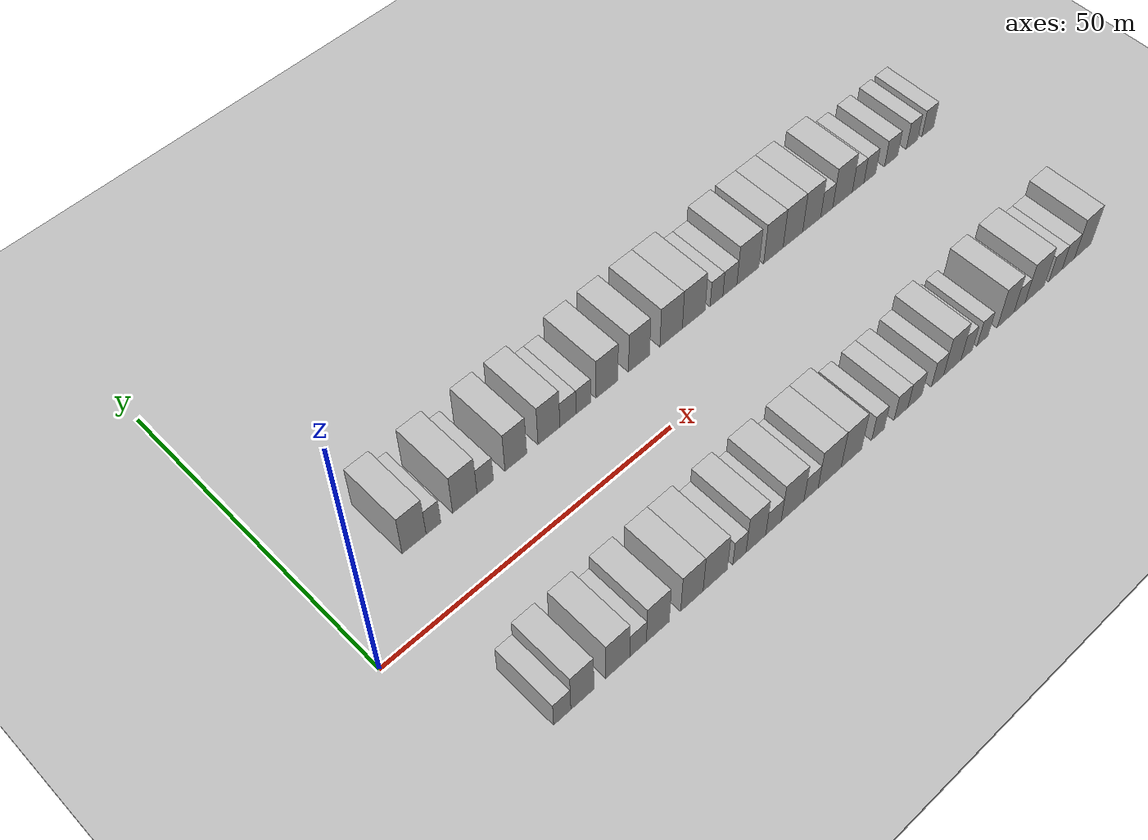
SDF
<sdf version="1.6">
 <world name="default">
  <include><name>ground_plane_1</name><uri>model://HANNAS_ground_plane</uri></include>
  <include>
   <name>ground_plane_2</name>
   <uri>model://HANNAS_ground_plane</uri>
   <pose>100 0 0  0 0 0</pose>
  </include>
  <model name="building_1">
   <static>1</static>
   <pose>13.9863 15.0000 0 0.000000 0.000000 1.570796</pose>
   <link name="link">
    <pose>0 0 4.50 0 0 0</pose>
    <collision name="collision"><geometry><box><size>10.0000 3.9726 9.0000</size></box></geometry></collision>
    <visual name="visual">
     <cast_shadows>0</cast_shadows>
     <geometry><box><size>10.0000 3.9726 9.0000</size></box></geometry>
     <material>
      <script>
       <uri>model://HANNAS_wall/materials/scripts</uri>
       <uri>model://HANNAS_wall/materials/textures</uri>
       <name>vrc/HANNAS_wall</name>
      </script>
     </material>
    </visual>
   </link>
  </model>
  <model name="building_2">
   <static>1</static>
   <pose>17.2035 15.0000 0 0.000000 0.000000 1.570796</pose>
   <link name="link">
    <pose>0 0 3.00 0 0 0</pose>
    <collision name="collision"><geometry><box><size>10.0000 2.4617 6.0000</size></box></geometry></collision>
    <visual name="visual">
     <cast_shadows>0</cast_shadows>
     <geometry><box><size>10.0000 2.4617 6.0000</size></box></geometry>
     <material>
      <script>
       <uri>model://HANNAS_wall/materials/scripts</uri>
       <uri>model://HANNAS_wall/materials/textures</uri>
       <name>vrc/HANNAS_wall</name>
      </script>
     </material>
    </visual>
   </link>
  </model>
  <model name="building_3">
   <static>1</static>
   <pose>22.5151 15.0000 0 0.000000 0.000000 1.570796</pose>
   <link name="link">
    <pose>0 0 4.50 0 0 0</pose>
    <collision name="collision"><geometry><box><size>10.0000 4.1615 9.0000</size></box></geometry></collision>
    <visual name="visual">
     <cast_shadows>0</cast_shadows>
     <geometry><box><size>10.0000 4.1615 9.0000</size></box></geometry>
     <material>
      <script>
       <uri>model://HANNAS_wall/materials/scripts</uri>
       <uri>model://HANNAS_wall/materials/textures</uri>
       <name>vrc/HANNAS_wall</name>
      </script>
     </material>
    </visual>
   </link>
  </model>
  <model name="building_4">
   <static>1</static>
   <pose>26.0151 15.0000 0 0.000000 0.000000 1.570796</pose>
   <link name="link">
    <pose>0 0 3.00 0 0 0</pose>
    <collision name="collision"><geometry><box><size>10.0000 2.8385 6.0000</size></box></geometry></collision>
    <visual name="visual">
     <cast_shadows>0</cast_shadows>
     <geometry><box><size>10.0000 2.8385 6.0000</size></box></geometry>
     <material>
      <script>
       <uri>model://HANNAS_wall/materials/scripts</uri>
       <uri>model://HANNAS_wall/materials/textures</uri>
       <name>vrc/HANNAS_wall</name>
      </script>
     </material>
    </visual>
   </link>
  </model>
  <model name="building_5">
   <static>1</static>
   <pose>31.3539 15.0000 0 0.000000 0.000000 1.570796</pose>
   <link name="link">
    <pose>0 0 4.50 0 0 0</pose>
    <collision name="collision"><geometry><box><size>10.0000 3.8392 9.0000</size></box></geometry></collision>
    <visual name="visual">
     <cast_shadows>0</cast_shadows>
     <geometry><box><size>10.0000 3.8392 9.0000</size></box></geometry>
     <material>
      <script>
       <uri>model://HANNAS_wall/materials/scripts</uri>
       <uri>model://HANNAS_wall/materials/textures</uri>
       <name>vrc/HANNAS_wall</name>
      </script>
     </material>
    </visual>
   </link>
  </model>
  <model name="building_6">
   <static>1</static>
   <pose>37.2430 15.0000 0 0.000000 0.000000 1.570796</pose>
   <link name="link">
    <pose>0 0 4.50 0 0 0</pose>
    <collision name="collision"><geometry><box><size>10.0000 3.9389 9.0000</size></box></geometry></collision>
    <visual name="visual">
     <cast_shadows>0</cast_shadows>
     <geometry><box><size>10.0000 3.9389 9.0000</size></box></geometry>
     <material>
      <script>
       <uri>model://HANNAS_wall/materials/scripts</uri>
       <uri>model://HANNAS_wall/materials/textures</uri>
       <name>vrc/HANNAS_wall</name>
      </script>
     </material>
    </visual>
   </link>
  </model>
  <model name="building_7">
   <static>1</static>
   <pose>40.6891 15.0000 0 0.000000 0.000000 1.570796</pose>
   <link name="link">
    <pose>0 0 3.00 0 0 0</pose>
    <collision name="collision"><geometry><box><size>10.0000 2.9532 6.0000</size></box></geometry></collision>
    <visual name="visual">
     <cast_shadows>0</cast_shadows>
     <geometry><box><size>10.0000 2.9532 6.0000</size></box></geometry>
     <material>
      <script>
       <uri>model://HANNAS_wall/materials/scripts</uri>
       <uri>model://HANNAS_wall/materials/textures</uri>
       <name>vrc/HANNAS_wall</name>
      </script>
     </material>
    </visual>
   </link>
  </model>
  <model name="building_8">
   <static>1</static>
   <pose>43.5024 15.0000 0 0.000000 0.000000 1.570796</pose>
   <link name="link">
    <pose>0 0 3.00 0 0 0</pose>
    <collision name="collision"><geometry><box><size>10.0000 2.6734 6.0000</size></box></geometry></collision>
    <visual name="visual">
     <cast_shadows>0</cast_shadows>
     <geometry><box><size>10.0000 2.6734 6.0000</size></box></geometry>
     <material>
      <script>
       <uri>model://HANNAS_wall/materials/scripts</uri>
       <uri>model://HANNAS_wall/materials/textures</uri>
       <name>vrc/HANNAS_wall</name>
      </script>
     </material>
    </visual>
   </link>
  </model>
  <model name="building_9">
   <static>1</static>
   <pose>47.8759 15.0000 0 0.000000 0.000000 1.570796</pose>
   <link name="link">
    <pose>0 0 4.50 0 0 0</pose>
    <collision name="collision"><geometry><box><size>10.0000 4.0736 9.0000</size></box></geometry></collision>
    <visual name="visual">
     <cast_shadows>0</cast_shadows>
     <geometry><box><size>10.0000 4.0736 9.0000</size></box></geometry>
     <material>
      <script>
       <uri>model://HANNAS_wall/materials/scripts</uri>
       <uri>model://HANNAS_wall/materials/textures</uri>
       <name>vrc/HANNAS_wall</name>
      </script>
     </material>
    </visual>
   </link>
  </model>
  <model name="building_10">
   <static>1</static>
   <pose>53.9139 15.0000 0 0.000000 0.000000 1.570796</pose>
   <link name="link">
    <pose>0 0 4.50 0 0 0</pose>
    <collision name="collision"><geometry><box><size>10.0000 4.0025 9.0000</size></box></geometry></collision>
    <visual name="visual">
     <cast_shadows>0</cast_shadows>
     <geometry><box><size>10.0000 4.0025 9.0000</size></box></geometry>
     <material>
      <script>
       <uri>model://HANNAS_wall/materials/scripts</uri>
       <uri>model://HANNAS_wall/materials/textures</uri>
       <name>vrc/HANNAS_wall</name>
      </script>
     </material>
    </visual>
   </link>
  </model>
  <model name="building_11">
   <static>1</static>
   <pose>60.0964 15.0000 0 0.000000 0.000000 1.570796</pose>
   <link name="link">
    <pose>0 0 4.50 0 0 0</pose>
    <collision name="collision"><geometry><box><size>10.0000 4.3625 9.0000</size></box></geometry></collision>
    <visual name="visual">
     <cast_shadows>0</cast_shadows>
     <geometry><box><size>10.0000 4.3625 9.0000</size></box></geometry>
     <material>
      <script>
       <uri>model://HANNAS_wall/materials/scripts</uri>
       <uri>model://HANNAS_wall/materials/textures</uri>
       <name>vrc/HANNAS_wall</name>
      </script>
     </material>
    </visual>
   </link>
  </model>
  <model name="building_12">
   <static>1</static>
   <pose>64.5238 15.0000 0 0.000000 0.000000 1.570796</pose>
   <link name="link">
    <pose>0 0 4.50 0 0 0</pose>
    <collision name="collision"><geometry><box><size>10.0000 4.4922 9.0000</size></box></geometry></collision>
    <visual name="visual">
     <cast_shadows>0</cast_shadows>
     <geometry><box><size>10.0000 4.4922 9.0000</size></box></geometry>
     <material>
      <script>
       <uri>model://HANNAS_wall/materials/scripts</uri>
       <uri>model://HANNAS_wall/materials/textures</uri>
       <name>vrc/HANNAS_wall</name>
      </script>
     </material>
    </visual>
   </link>
  </model>
  <model name="building_13">
   <static>1</static>
   <pose>69.0498 15.0000 0 0.000000 0.000000 1.570796</pose>
   <link name="link">
    <pose>0 0 3.00 0 0 0</pose>
    <collision name="collision"><geometry><box><size>10.0000 2.5598 6.0000</size></box></geometry></collision>
    <visual name="visual">
     <cast_shadows>0</cast_shadows>
     <geometry><box><size>10.0000 2.5598 6.0000</size></box></geometry>
     <material>
      <script>
       <uri>model://HANNAS_wall/materials/scripts</uri>
       <uri>model://HANNAS_wall/materials/textures</uri>
       <name>vrc/HANNAS_wall</name>
      </script>
     </material>
    </visual>
   </link>
  </model>
  <model name="building_14">
   <static>1</static>
   <pose>71.7501 15.0000 0 0.000000 0.000000 1.570796</pose>
   <link name="link">
    <pose>0 0 3.00 0 0 0</pose>
    <collision name="collision"><geometry><box><size>10.0000 2.8408 6.0000</size></box></geometry></collision>
    <visual name="visual">
     <cast_shadows>0</cast_shadows>
     <geometry><box><size>10.0000 2.8408 6.0000</size></box></geometry>
     <material>
      <script>
       <uri>model://HANNAS_wall/materials/scripts</uri>
       <uri>model://HANNAS_wall/materials/textures</uri>
       <name>vrc/HANNAS_wall</name>
      </script>
     </material>
    </visual>
   </link>
  </model>
  <model name="building_15">
   <static>1</static>
   <pose>75.4201 15.0000 0 0.000000 0.000000 1.570796</pose>
   <link name="link">
    <pose>0 0 4.50 0 0 0</pose>
    <collision name="collision"><geometry><box><size>10.0000 4.4993 9.0000</size></box></geometry></collision>
    <visual name="visual">
     <cast_shadows>0</cast_shadows>
     <geometry><box><size>10.0000 4.4993 9.0000</size></box></geometry>
     <material>
      <script>
       <uri>model://HANNAS_wall/materials/scripts</uri>
       <uri>model://HANNAS_wall/materials/textures</uri>
       <name>vrc/HANNAS_wall</name>
      </script>
     </material>
    </visual>
   </link>
  </model>
  <model name="building_16">
   <static>1</static>
   <pose>80.6914 15.0000 0 0.000000 0.000000 1.570796</pose>
   <link name="link">
    <pose>0 0 4.50 0 0 0</pose>
    <collision name="collision"><geometry><box><size>10.0000 4.0434 9.0000</size></box></geometry></collision>
    <visual name="visual">
     <cast_shadows>0</cast_shadows>
     <geometry><box><size>10.0000 4.0434 9.0000</size></box></geometry>
     <material>
      <script>
       <uri>model://HANNAS_wall/materials/scripts</uri>
       <uri>model://HANNAS_wall/materials/textures</uri>
       <name>vrc/HANNAS_wall</name>
      </script>
     </material>
    </visual>
   </link>
  </model>
  <model name="building_17">
   <static>1</static>
   <pose>84.7833 15.0000 0 0.000000 0.000000 1.570796</pose>
   <link name="link">
    <pose>0 0 4.50 0 0 0</pose>
    <collision name="collision"><geometry><box><size>10.0000 4.1405 9.0000</size></box></geometry></collision>
    <visual name="visual">
     <cast_shadows>0</cast_shadows>
     <geometry><box><size>10.0000 4.1405 9.0000</size></box></geometry>
     <material>
      <script>
       <uri>model://HANNAS_wall/materials/scripts</uri>
       <uri>model://HANNAS_wall/materials/textures</uri>
       <name>vrc/HANNAS_wall</name>
      </script>
     </material>
    </visual>
   </link>
  </model>
  <model name="building_18">
   <static>1</static>
   <pose>88.7812 15.0000 0 0.000000 0.000000 1.570796</pose>
   <link name="link">
    <pose>0 0 4.50 0 0 0</pose>
    <collision name="collision"><geometry><box><size>10.0000 3.8553 9.0000</size></box></geometry></collision>
    <visual name="visual">
     <cast_shadows>0</cast_shadows>
     <geometry><box><size>10.0000 3.8553 9.0000</size></box></geometry>
     <material>
      <script>
       <uri>model://HANNAS_wall/materials/scripts</uri>
       <uri>model://HANNAS_wall/materials/textures</uri>
       <name>vrc/HANNAS_wall</name>
      </script>
     </material>
    </visual>
   </link>
  </model>
  <model name="building_19">
   <static>1</static>
   <pose>92.0073 15.0000 0 0.000000 0.000000 1.570796</pose>
   <link name="link">
    <pose>0 0 3.00 0 0 0</pose>
    <collision name="collision"><geometry><box><size>10.0000 2.5967 6.0000</size></box></geometry></collision>
    <visual name="visual">
     <cast_shadows>0</cast_shadows>
     <geometry><box><size>10.0000 2.5967 6.0000</size></box></geometry>
     <material>
      <script>
       <uri>model://HANNAS_wall/materials/scripts</uri>
       <uri>model://HANNAS_wall/materials/textures</uri>
       <name>vrc/HANNAS_wall</name>
      </script>
     </material>
    </visual>
   </link>
  </model>
  <model name="building_20">
   <static>1</static>
   <pose>95.4486 15.0000 0 0.000000 0.000000 1.570796</pose>
   <link name="link">
    <pose>0 0 4.50 0 0 0</pose>
    <collision name="collision"><geometry><box><size>10.0000 4.2859 9.0000</size></box></geometry></collision>
    <visual name="visual">
     <cast_shadows>0</cast_shadows>
     <geometry><box><size>10.0000 4.2859 9.0000</size></box></geometry>
     <material>
      <script>
       <uri>model://HANNAS_wall/materials/scripts</uri>
       <uri>model://HANNAS_wall/materials/textures</uri>
       <name>vrc/HANNAS_wall</name>
      </script>
     </material>
    </visual>
   </link>
  </model>
  <model name="building_21">
   <static>1</static>
   <pose>98.8770 15.0000 0 0.000000 0.000000 1.570796</pose>
   <link name="link">
    <pose>0 0 3.00 0 0 0</pose>
    <collision name="collision"><geometry><box><size>10.0000 2.5709 6.0000</size></box></geometry></collision>
    <visual name="visual">
     <cast_shadows>0</cast_shadows>
     <geometry><box><size>10.0000 2.5709 6.0000</size></box></geometry>
     <material>
      <script>
       <uri>model://HANNAS_wall/materials/scripts</uri>
       <uri>model://HANNAS_wall/materials/textures</uri>
       <name>vrc/HANNAS_wall</name>
      </script>
     </material>
    </visual>
   </link>
  </model>
  <model name="building_22">
   <static>1</static>
   <pose>101.4697 15.0000 0 0.000000 0.000000 1.570796</pose>
   <link name="link">
    <pose>0 0 3.00 0 0 0</pose>
    <collision name="collision"><geometry><box><size>10.0000 2.6144 6.0000</size></box></geometry></collision>
    <visual name="visual">
     <cast_shadows>0</cast_shadows>
     <geometry><box><size>10.0000 2.6144 6.0000</size></box></geometry>
     <material>
      <script>
       <uri>model://HANNAS_wall/materials/scripts</uri>
       <uri>model://HANNAS_wall/materials/textures</uri>
       <name>vrc/HANNAS_wall</name>
      </script>
     </material>
    </visual>
   </link>
  </model>
  <model name="building_23">
   <static>1</static>
   <pose>106.2533 15.0000 0 0.000000 0.000000 1.570796</pose>
   <link name="link">
    <pose>0 0 3.00 0 0 0</pose>
    <collision name="collision"><geometry><box><size>10.0000 2.9528 6.0000</size></box></geometry></collision>
    <visual name="visual">
     <cast_shadows>0</cast_shadows>
     <geometry><box><size>10.0000 2.9528 6.0000</size></box></geometry>
     <material>
      <script>
       <uri>model://HANNAS_wall/materials/scripts</uri>
       <uri>model://HANNAS_wall/materials/textures</uri>
       <name>vrc/HANNAS_wall</name>
      </script>
     </material>
    </visual>
   </link>
  </model>
  <model name="building_24">
   <static>1</static>
   <pose>111.0208 15.0000 0 0.000000 0.000000 1.570796</pose>
   <link name="link">
    <pose>0 0 3.00 0 0 0</pose>
    <collision name="collision"><geometry><box><size>10.0000 2.5822 6.0000</size></box></geometry></collision>
    <visual name="visual">
     <cast_shadows>0</cast_shadows>
     <geometry><box><size>10.0000 2.5822 6.0000</size></box></geometry>
     <material>
      <script>
       <uri>model://HANNAS_wall/materials/scripts</uri>
       <uri>model://HANNAS_wall/materials/textures</uri>
       <name>vrc/HANNAS_wall</name>
      </script>
     </material>
    </visual>
   </link>
  </model>
  <model name="building_25">
   <static>1</static>
   <pose>114.6714 15.0000 0 0.000000 0.000000 1.570796</pose>
   <link name="link">
    <pose>0 0 3.00 0 0 0</pose>
    <collision name="collision"><geometry><box><size>10.0000 2.7189 6.0000</size></box></geometry></collision>
    <visual name="visual">
     <cast_shadows>0</cast_shadows>
     <geometry><box><size>10.0000 2.7189 6.0000</size></box></geometry>
     <material>
      <script>
       <uri>model://HANNAS_wall/materials/scripts</uri>
       <uri>model://HANNAS_wall/materials/textures</uri>
       <name>vrc/HANNAS_wall</name>
      </script>
     </material>
    </visual>
   </link>
  </model>
  <model name="building_52">
   <static>1</static>
   <pose>11.3973 -15.0000 0 0.000000 0.000000 1.570796</pose>
   <link name="link">
    <pose>0 0 3.00 0 0 0</pose>
    <collision name="collision"><geometry><box><size>10.0000 2.7946 6.0000</size></box></geometry></collision>
    <visual name="visual">
     <cast_shadows>0</cast_shadows>
     <geometry><box><size>10.0000 2.7946 6.0000</size></box></geometry>
     <material>
      <script>
       <uri>model://HANNAS_wall/materials/scripts</uri>
       <uri>model://HANNAS_wall/materials/textures</uri>
       <name>vrc/HANNAS_wall</name>
      </script>
     </material>
    </visual>
   </link>
  </model>
  <model name="building_53">
   <static>1</static>
   <pose>14.6870 -15.0000 0 0.000000 0.000000 1.570796</pose>
   <link name="link">
    <pose>0 0 4.50 0 0 0</pose>
    <collision name="collision"><geometry><box><size>10.0000 3.7847 9.0000</size></box></geometry></collision>
    <visual name="visual">
     <cast_shadows>0</cast_shadows>
     <geometry><box><size>10.0000 3.7847 9.0000</size></box></geometry>
     <material>
      <script>
       <uri>model://HANNAS_wall/materials/scripts</uri>
       <uri>model://HANNAS_wall/materials/textures</uri>
       <name>vrc/HANNAS_wall</name>
      </script>
     </material>
    </visual>
   </link>
  </model>
  <model name="building_54">
   <static>1</static>
   <pose>20.5842 -15.0000 0 0.000000 0.000000 1.570796</pose>
   <link name="link">
    <pose>0 0 4.50 0 0 0</pose>
    <collision name="collision"><geometry><box><size>10.0000 4.0096 9.0000</size></box></geometry></collision>
    <visual name="visual">
     <cast_shadows>0</cast_shadows>
     <geometry><box><size>10.0000 4.0096 9.0000</size></box></geometry>
     <material>
      <script>
       <uri>model://HANNAS_wall/materials/scripts</uri>
       <uri>model://HANNAS_wall/materials/textures</uri>
       <name>vrc/HANNAS_wall</name>
      </script>
     </material>
    </visual>
   </link>
  </model>
  <model name="building_55">
   <static>1</static>
   <pose>24.0114 -15.0000 0 0.000000 0.000000 1.570796</pose>
   <link name="link">
    <pose>0 0 3.00 0 0 0</pose>
    <collision name="collision"><geometry><box><size>10.0000 2.8448 6.0000</size></box></geometry></collision>
    <visual name="visual">
     <cast_shadows>0</cast_shadows>
     <geometry><box><size>10.0000 2.8448 6.0000</size></box></geometry>
     <material>
      <script>
       <uri>model://HANNAS_wall/materials/scripts</uri>
       <uri>model://HANNAS_wall/materials/textures</uri>
       <name>vrc/HANNAS_wall</name>
      </script>
     </material>
    </visual>
   </link>
  </model>
  <model name="building_56">
   <static>1</static>
   <pose>27.4137 -15.0000 0 0.000000 0.000000 1.570796</pose>
   <link name="link">
    <pose>0 0 4.50 0 0 0</pose>
    <collision name="collision"><geometry><box><size>10.0000 3.9599 9.0000</size></box></geometry></collision>
    <visual name="visual">
     <cast_shadows>0</cast_shadows>
     <geometry><box><size>10.0000 3.9599 9.0000</size></box></geometry>
     <material>
      <script>
       <uri>model://HANNAS_wall/materials/scripts</uri>
       <uri>model://HANNAS_wall/materials/textures</uri>
       <name>vrc/HANNAS_wall</name>
      </script>
     </material>
    </visual>
   </link>
  </model>
  <model name="building_57">
   <static>1</static>
   <pose>33.3716 -15.0000 0 0.000000 0.000000 1.570796</pose>
   <link name="link">
    <pose>0 0 4.50 0 0 0</pose>
    <collision name="collision"><geometry><box><size>10.0000 3.9559 9.0000</size></box></geometry></collision>
    <visual name="visual">
     <cast_shadows>0</cast_shadows>
     <geometry><box><size>10.0000 3.9559 9.0000</size></box></geometry>
     <material>
      <script>
       <uri>model://HANNAS_wall/materials/scripts</uri>
       <uri>model://HANNAS_wall/materials/textures</uri>
       <name>vrc/HANNAS_wall</name>
      </script>
     </material>
    </visual>
   </link>
  </model>
  <model name="building_58">
   <static>1</static>
   <pose>37.5189 -15.0000 0 0.000000 0.000000 1.570796</pose>
   <link name="link">
    <pose>0 0 4.50 0 0 0</pose>
    <collision name="collision"><geometry><box><size>10.0000 4.3388 9.0000</size></box></geometry></collision>
    <visual name="visual">
     <cast_shadows>0</cast_shadows>
     <geometry><box><size>10.0000 4.3388 9.0000</size></box></geometry>
     <material>
      <script>
       <uri>model://HANNAS_wall/materials/scripts</uri>
       <uri>model://HANNAS_wall/materials/textures</uri>
       <name>vrc/HANNAS_wall</name>
      </script>
     </material>
    </visual>
   </link>
  </model>
  <model name="building_59">
   <static>1</static>
   <pose>41.8885 -15.0000 0 0.000000 0.000000 1.570796</pose>
   <link name="link">
    <pose>0 0 3.00 0 0 0</pose>
    <collision name="collision"><geometry><box><size>10.0000 2.4004 6.0000</size></box></geometry></collision>
    <visual name="visual">
     <cast_shadows>0</cast_shadows>
     <geometry><box><size>10.0000 2.4004 6.0000</size></box></geometry>
     <material>
      <script>
       <uri>model://HANNAS_wall/materials/scripts</uri>
       <uri>model://HANNAS_wall/materials/textures</uri>
       <name>vrc/HANNAS_wall</name>
      </script>
     </material>
    </visual>
   </link>
  </model>
  <model name="building_60">
   <static>1</static>
   <pose>44.9065 -15.0000 0 0.000000 0.000000 1.570796</pose>
   <link name="link">
    <pose>0 0 4.50 0 0 0</pose>
    <collision name="collision"><geometry><box><size>10.0000 3.6356 9.0000</size></box></geometry></collision>
    <visual name="visual">
     <cast_shadows>0</cast_shadows>
     <geometry><box><size>10.0000 3.6356 9.0000</size></box></geometry>
     <material>
      <script>
       <uri>model://HANNAS_wall/materials/scripts</uri>
       <uri>model://HANNAS_wall/materials/textures</uri>
       <name>vrc/HANNAS_wall</name>
      </script>
     </material>
    </visual>
   </link>
  </model>
  <model name="building_61">
   <static>1</static>
   <pose>48.1842 -15.0000 0 0.000000 0.000000 1.570796</pose>
   <link name="link">
    <pose>0 0 3.00 0 0 0</pose>
    <collision name="collision"><geometry><box><size>10.0000 2.9200 6.0000</size></box></geometry></collision>
    <visual name="visual">
     <cast_shadows>0</cast_shadows>
     <geometry><box><size>10.0000 2.9200 6.0000</size></box></geometry>
     <material>
      <script>
       <uri>model://HANNAS_wall/materials/scripts</uri>
       <uri>model://HANNAS_wall/materials/textures</uri>
       <name>vrc/HANNAS_wall</name>
      </script>
     </material>
    </visual>
   </link>
  </model>
  <model name="building_62">
   <static>1</static>
   <pose>51.7884 -15.0000 0 0.000000 0.000000 1.570796</pose>
   <link name="link">
    <pose>0 0 4.50 0 0 0</pose>
    <collision name="collision"><geometry><box><size>10.0000 4.2884 9.0000</size></box></geometry></collision>
    <visual name="visual">
     <cast_shadows>0</cast_shadows>
     <geometry><box><size>10.0000 4.2884 9.0000</size></box></geometry>
     <material>
      <script>
       <uri>model://HANNAS_wall/materials/scripts</uri>
       <uri>model://HANNAS_wall/materials/textures</uri>
       <name>vrc/HANNAS_wall</name>
      </script>
     </material>
    </visual>
   </link>
  </model>
  <model name="building_63">
   <static>1</static>
   <pose>55.2880 -15.0000 0 0.000000 0.000000 1.570796</pose>
   <link name="link">
    <pose>0 0 3.00 0 0 0</pose>
    <collision name="collision"><geometry><box><size>10.0000 2.7107 6.0000</size></box></geometry></collision>
    <visual name="visual">
     <cast_shadows>0</cast_shadows>
     <geometry><box><size>10.0000 2.7107 6.0000</size></box></geometry>
     <material>
      <script>
       <uri>model://HANNAS_wall/materials/scripts</uri>
       <uri>model://HANNAS_wall/materials/textures</uri>
       <name>vrc/HANNAS_wall</name>
      </script>
     </material>
    </visual>
   </link>
  </model>
  <model name="building_64">
   <static>1</static>
   <pose>58.8782 -15.0000 0 0.000000 0.000000 1.570796</pose>
   <link name="link">
    <pose>0 0 4.50 0 0 0</pose>
    <collision name="collision"><geometry><box><size>10.0000 4.4697 9.0000</size></box></geometry></collision>
    <visual name="visual">
     <cast_shadows>0</cast_shadows>
     <geometry><box><size>10.0000 4.4697 9.0000</size></box></geometry>
     <material>
      <script>
       <uri>model://HANNAS_wall/materials/scripts</uri>
       <uri>model://HANNAS_wall/materials/textures</uri>
       <name>vrc/HANNAS_wall</name>
      </script>
     </material>
    </visual>
   </link>
  </model>
  <model name="building_65">
   <static>1</static>
   <pose>63.1442 -15.0000 0 0.000000 0.000000 1.570796</pose>
   <link name="link">
    <pose>0 0 4.50 0 0 0</pose>
    <collision name="collision"><geometry><box><size>10.0000 4.0622 9.0000</size></box></geometry></collision>
    <visual name="visual">
     <cast_shadows>0</cast_shadows>
     <geometry><box><size>10.0000 4.0622 9.0000</size></box></geometry>
     <material>
      <script>
       <uri>model://HANNAS_wall/materials/scripts</uri>
       <uri>model://HANNAS_wall/materials/textures</uri>
       <name>vrc/HANNAS_wall</name>
      </script>
     </material>
    </visual>
   </link>
  </model>
  <model name="building_66">
   <static>1</static>
   <pose>68.4313 -15.0000 0 0.000000 0.000000 1.570796</pose>
   <link name="link">
    <pose>0 0 3.00 0 0 0</pose>
    <collision name="collision"><geometry><box><size>10.0000 2.5121 6.0000</size></box></geometry></collision>
    <visual name="visual">
     <cast_shadows>0</cast_shadows>
     <geometry><box><size>10.0000 2.5121 6.0000</size></box></geometry>
     <material>
      <script>
       <uri>model://HANNAS_wall/materials/scripts</uri>
       <uri>model://HANNAS_wall/materials/textures</uri>
       <name>vrc/HANNAS_wall</name>
      </script>
     </material>
    </visual>
   </link>
  </model>
  <model name="building_67">
   <static>1</static>
   <pose>73.0961 -15.0000 0 0.000000 0.000000 1.570796</pose>
   <link name="link">
    <pose>0 0 3.00 0 0 0</pose>
    <collision name="collision"><geometry><box><size>10.0000 2.8175 6.0000</size></box></geometry></collision>
    <visual name="visual">
     <cast_shadows>0</cast_shadows>
     <geometry><box><size>10.0000 2.8175 6.0000</size></box></geometry>
     <material>
      <script>
       <uri>model://HANNAS_wall/materials/scripts</uri>
       <uri>model://HANNAS_wall/materials/textures</uri>
       <name>vrc/HANNAS_wall</name>
      </script>
     </material>
    </visual>
   </link>
  </model>
  <model name="building_68">
   <static>1</static>
   <pose>75.9450 -15.0000 0 0.000000 0.000000 1.570796</pose>
   <link name="link">
    <pose>0 0 3.00 0 0 0</pose>
    <collision name="collision"><geometry><box><size>10.0000 2.8802 6.0000</size></box></geometry></collision>
    <visual name="visual">
     <cast_shadows>0</cast_shadows>
     <geometry><box><size>10.0000 2.8802 6.0000</size></box></geometry>
     <material>
      <script>
       <uri>model://HANNAS_wall/materials/scripts</uri>
       <uri>model://HANNAS_wall/materials/textures</uri>
       <name>vrc/HANNAS_wall</name>
      </script>
     </material>
    </visual>
   </link>
  </model>
  <model name="building_69">
   <static>1</static>
   <pose>80.6461 -15.0000 0 0.000000 0.000000 1.570796</pose>
   <link name="link">
    <pose>0 0 3.00 0 0 0</pose>
    <collision name="collision"><geometry><box><size>10.0000 2.5220 6.0000</size></box></geometry></collision>
    <visual name="visual">
     <cast_shadows>0</cast_shadows>
     <geometry><box><size>10.0000 2.5220 6.0000</size></box></geometry>
     <material>
      <script>
       <uri>model://HANNAS_wall/materials/scripts</uri>
       <uri>model://HANNAS_wall/materials/textures</uri>
       <name>vrc/HANNAS_wall</name>
      </script>
     </material>
    </visual>
   </link>
  </model>
  <model name="building_70">
   <static>1</static>
   <pose>83.7614 -15.0000 0 0.000000 0.000000 1.570796</pose>
   <link name="link">
    <pose>0 0 4.50 0 0 0</pose>
    <collision name="collision"><geometry><box><size>10.0000 3.7086 9.0000</size></box></geometry></collision>
    <visual name="visual">
     <cast_shadows>0</cast_shadows>
     <geometry><box><size>10.0000 3.7086 9.0000</size></box></geometry>
     <material>
      <script>
       <uri>model://HANNAS_wall/materials/scripts</uri>
       <uri>model://HANNAS_wall/materials/textures</uri>
       <name>vrc/HANNAS_wall</name>
      </script>
     </material>
    </visual>
   </link>
  </model>
  <model name="building_71">
   <static>1</static>
   <pose>86.8402 -15.0000 0 0.000000 0.000000 1.570796</pose>
   <link name="link">
    <pose>0 0 3.00 0 0 0</pose>
    <collision name="collision"><geometry><box><size>10.0000 2.4489 6.0000</size></box></geometry></collision>
    <visual name="visual">
     <cast_shadows>0</cast_shadows>
     <geometry><box><size>10.0000 2.4489 6.0000</size></box></geometry>
     <material>
      <script>
       <uri>model://HANNAS_wall/materials/scripts</uri>
       <uri>model://HANNAS_wall/materials/textures</uri>
       <name>vrc/HANNAS_wall</name>
      </script>
     </material>
    </visual>
   </link>
  </model>
  <model name="building_72">
   <static>1</static>
   <pose>90.2648 -15.0000 0 0.000000 0.000000 1.570796</pose>
   <link name="link">
    <pose>0 0 3.00 0 0 0</pose>
    <collision name="collision"><geometry><box><size>10.0000 2.4004 6.0000</size></box></geometry></collision>
    <visual name="visual">
     <cast_shadows>0</cast_shadows>
     <geometry><box><size>10.0000 2.4004 6.0000</size></box></geometry>
     <material>
      <script>
       <uri>model://HANNAS_wall/materials/scripts</uri>
       <uri>model://HANNAS_wall/materials/textures</uri>
       <name>vrc/HANNAS_wall</name>
      </script>
     </material>
    </visual>
   </link>
  </model>
  <model name="building_73">
   <static>1</static>
   <pose>95.2862 -15.0000 0 0.000000 0.000000 1.570796</pose>
   <link name="link">
    <pose>0 0 4.50 0 0 0</pose>
    <collision name="collision"><geometry><box><size>10.0000 3.6424 9.0000</size></box></geometry></collision>
    <visual name="visual">
     <cast_shadows>0</cast_shadows>
     <geometry><box><size>10.0000 3.6424 9.0000</size></box></geometry>
     <material>
      <script>
       <uri>model://HANNAS_wall/materials/scripts</uri>
       <uri>model://HANNAS_wall/materials/textures</uri>
       <name>vrc/HANNAS_wall</name>
      </script>
     </material>
    </visual>
   </link>
  </model>
  <model name="building_74">
   <static>1</static>
   <pose>98.3562 -15.0000 0 0.000000 0.000000 1.570796</pose>
   <link name="link">
    <pose>0 0 3.00 0 0 0</pose>
    <collision name="collision"><geometry><box><size>10.0000 2.4974 6.0000</size></box></geometry></collision>
    <visual name="visual">
     <cast_shadows>0</cast_shadows>
     <geometry><box><size>10.0000 2.4974 6.0000</size></box></geometry>
     <material>
      <script>
       <uri>model://HANNAS_wall/materials/scripts</uri>
       <uri>model://HANNAS_wall/materials/textures</uri>
       <name>vrc/HANNAS_wall</name>
      </script>
     </material>
    </visual>
   </link>
  </model>
  <model name="building_75">
   <static>1</static>
   <pose>101.7871 -15.0000 0 0.000000 0.000000 1.570796</pose>
   <link name="link">
    <pose>0 0 4.50 0 0 0</pose>
    <collision name="collision"><geometry><box><size>10.0000 4.3645 9.0000</size></box></geometry></collision>
    <visual name="visual">
     <cast_shadows>0</cast_shadows>
     <geometry><box><size>10.0000 4.3645 9.0000</size></box></geometry>
     <material>
      <script>
       <uri>model://HANNAS_wall/materials/scripts</uri>
       <uri>model://HANNAS_wall/materials/textures</uri>
       <name>vrc/HANNAS_wall</name>
      </script>
     </material>
    </visual>
   </link>
  </model>
  <model name="building_76">
   <static>1</static>
   <pose>106.4688 -15.0000 0 0.000000 0.000000 1.570796</pose>
   <link name="link">
    <pose>0 0 3.00 0 0 0</pose>
    <collision name="collision"><geometry><box><size>10.0000 2.9989 6.0000</size></box></geometry></collision>
    <visual name="visual">
     <cast_shadows>0</cast_shadows>
     <geometry><box><size>10.0000 2.9989 6.0000</size></box></geometry>
     <material>
      <script>
       <uri>model://HANNAS_wall/materials/scripts</uri>
       <uri>model://HANNAS_wall/materials/textures</uri>
       <name>vrc/HANNAS_wall</name>
      </script>
     </material>
    </visual>
   </link>
  </model>
  <model name="building_77">
   <static>1</static>
   <pose>109.4089 -15.0000 0 0.000000 0.000000 1.570796</pose>
   <link name="link">
    <pose>0 0 3.00 0 0 0</pose>
    <collision name="collision"><geometry><box><size>10.0000 2.8814 6.0000</size></box></geometry></collision>
    <visual name="visual">
     <cast_shadows>0</cast_shadows>
     <geometry><box><size>10.0000 2.8814 6.0000</size></box></geometry>
     <material>
      <script>
       <uri>model://HANNAS_wall/materials/scripts</uri>
       <uri>model://HANNAS_wall/materials/textures</uri>
       <name>vrc/HANNAS_wall</name>
      </script>
     </material>
    </visual>
   </link>
  </model>
  <model name="building_78">
   <static>1</static>
   <pose>112.8025 -15.0000 0 0.000000 0.000000 1.570796</pose>
   <link name="link">
    <pose>0 0 4.50 0 0 0</pose>
    <collision name="collision"><geometry><box><size>10.0000 3.9058 9.0000</size></box></geometry></collision>
    <visual name="visual">
     <cast_shadows>0</cast_shadows>
     <geometry><box><size>10.0000 3.9058 9.0000</size></box></geometry>
     <material>
      <script>
       <uri>model://HANNAS_wall/materials/scripts</uri>
       <uri>model://HANNAS_wall/materials/textures</uri>
       <name>vrc/HANNAS_wall</name>
      </script>
     </material>
    </visual>
   </link>
  </model>
 </world>
</sdf>
